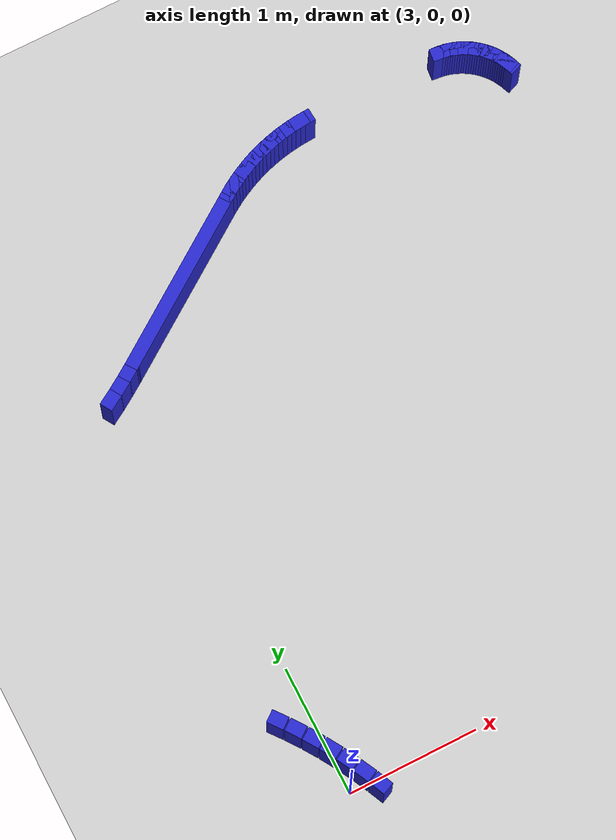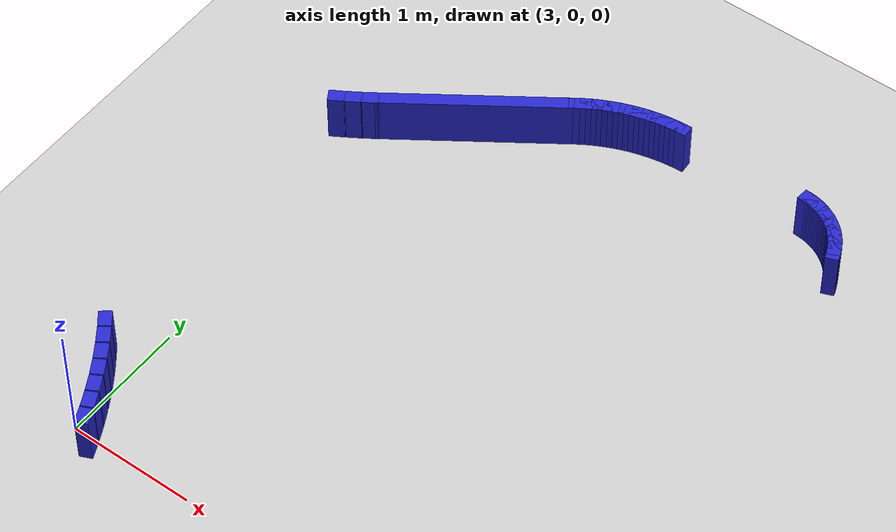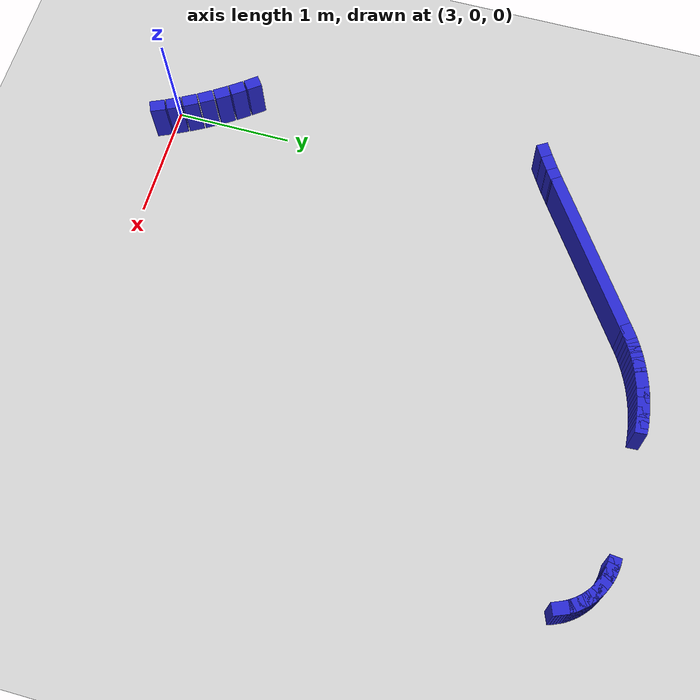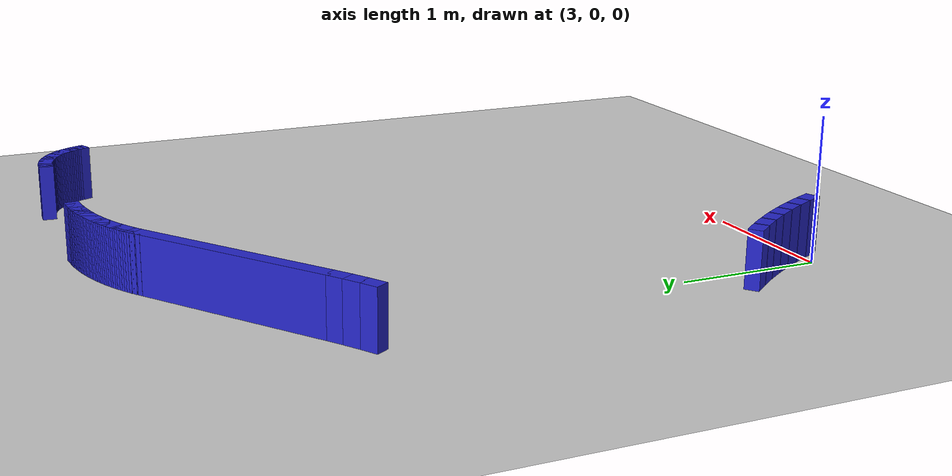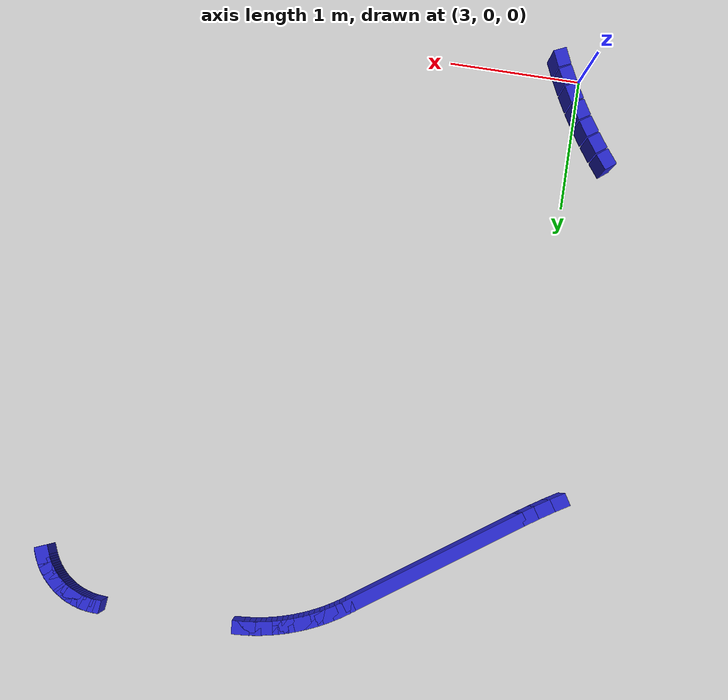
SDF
<sdf version="1.6">
 <world name="new_race_track">
  <include><uri>model://ground_plane</uri></include>
  <include><uri>model://sun</uri></include>
  <model name="race_track">
   <static>true</static>
   <link name="wall_link_142">
    <collision name="c"><geometry><box><size>0.1305 0.1 0.4</size></box></geometry></collision>
    <visual name="v">
     <geometry><box><size>0.1305 0.1 0.4</size></box></geometry>
     <material><ambient>0.15 0.15 0.8 1</ambient><diffuse>0.15 0.15 0.8 1</diffuse></material>
    </visual>
    <pose>2.7548 0.6383 0.200 0 0 -0.9062</pose>
   </link>
   <link name="wall_link_143">
    <collision name="c"><geometry><box><size>0.1305 0.1 0.4</size></box></geometry></collision>
    <visual name="v">
     <geometry><box><size>0.1305 0.1 0.4</size></box></geometry>
     <material><ambient>0.15 0.15 0.8 1</ambient><diffuse>0.15 0.15 0.8 1</diffuse></material>
    </visual>
    <pose>2.8395 0.5256 0.200 0 0 -0.9465</pose>
   </link>
   <link name="wall_link_144">
    <collision name="c"><geometry><box><size>0.1305 0.1 0.4</size></box></geometry></collision>
    <visual name="v">
     <geometry><box><size>0.1305 0.1 0.4</size></box></geometry>
     <material><ambient>0.15 0.15 0.8 1</ambient><diffuse>0.15 0.15 0.8 1</diffuse></material>
    </visual>
    <pose>2.9196 0.4096 0.200 0 0 -0.9868</pose>
   </link>
   <link name="wall_link_145">
    <collision name="c"><geometry><box><size>0.1305 0.1 0.4</size></box></geometry></collision>
    <visual name="v">
     <geometry><box><size>0.1305 0.1 0.4</size></box></geometry>
     <material><ambient>0.15 0.15 0.8 1</ambient><diffuse>0.15 0.15 0.8 1</diffuse></material>
    </visual>
    <pose>2.9949 0.2905 0.200 0 0 -1.0271</pose>
   </link>
   <link name="wall_link_146">
    <collision name="c"><geometry><box><size>0.1305 0.1 0.4</size></box></geometry></collision>
    <visual name="v">
     <geometry><box><size>0.1305 0.1 0.4</size></box></geometry>
     <material><ambient>0.15 0.15 0.8 1</ambient><diffuse>0.15 0.15 0.8 1</diffuse></material>
    </visual>
    <pose>3.0654 0.1684 0.200 0 0 -1.0673</pose>
   </link>
   <link name="wall_link_147">
    <collision name="c"><geometry><box><size>0.1305 0.1 0.4</size></box></geometry></collision>
    <visual name="v">
     <geometry><box><size>0.1305 0.1 0.4</size></box></geometry>
     <material><ambient>0.15 0.15 0.8 1</ambient><diffuse>0.15 0.15 0.8 1</diffuse></material>
    </visual>
    <pose>3.1309 0.0436 0.200 0 0 -1.1076</pose>
   </link>
   <link name="wall_link_148">
    <collision name="c"><geometry><box><size>0.1305 0.1 0.4</size></box></geometry></collision>
    <visual name="v">
     <geometry><box><size>0.1305 0.1 0.4</size></box></geometry>
     <material><ambient>0.15 0.15 0.8 1</ambient><diffuse>0.15 0.15 0.8 1</diffuse></material>
    </visual>
    <pose>3.1913 -0.0837 0.200 0 0 -1.1479</pose>
   </link>
   <link name="wall_link_249">
    <collision name="c"><geometry><box><size>0.1305 0.1 0.4</size></box></geometry></collision>
    <visual name="v">
     <geometry><box><size>0.1305 0.1 0.4</size></box></geometry>
     <material><ambient>0.15 0.15 0.8 1</ambient><diffuse>0.15 0.15 0.8 1</diffuse></material>
    </visual>
    <pose>6.4635 4.1865 0.200 0 0 1.9534</pose>
   </link>
   <link name="wall_link_250">
    <collision name="c"><geometry><box><size>0.1305 0.1 0.4</size></box></geometry></collision>
    <visual name="v">
     <geometry><box><size>0.1305 0.1 0.4</size></box></geometry>
     <material><ambient>0.15 0.15 0.8 1</ambient><diffuse>0.15 0.15 0.8 1</diffuse></material>
    </visual>
    <pose>6.4556 4.2050 0.200 0 0 1.9937</pose>
   </link>
   <link name="wall_link_251">
    <collision name="c"><geometry><box><size>0.1305 0.1 0.4</size></box></geometry></collision>
    <visual name="v">
     <geometry><box><size>0.1305 0.1 0.4</size></box></geometry>
     <material><ambient>0.15 0.15 0.8 1</ambient><diffuse>0.15 0.15 0.8 1</diffuse></material>
    </visual>
    <pose>6.4470 4.2232 0.200 0 0 2.0340</pose>
   </link>
   <link name="wall_link_252">
    <collision name="c"><geometry><box><size>0.1305 0.1 0.4</size></box></geometry></collision>
    <visual name="v">
     <geometry><box><size>0.1305 0.1 0.4</size></box></geometry>
     <material><ambient>0.15 0.15 0.8 1</ambient><diffuse>0.15 0.15 0.8 1</diffuse></material>
    </visual>
    <pose>6.4376 4.2410 0.200 0 0 2.0743</pose>
   </link>
   <link name="wall_link_253">
    <collision name="c"><geometry><box><size>0.1305 0.1 0.4</size></box></geometry></collision>
    <visual name="v">
     <geometry><box><size>0.1305 0.1 0.4</size></box></geometry>
     <material><ambient>0.15 0.15 0.8 1</ambient><diffuse>0.15 0.15 0.8 1</diffuse></material>
    </visual>
    <pose>6.4275 4.2585 0.200 0 0 2.1145</pose>
   </link>
   <link name="wall_link_254">
    <collision name="c"><geometry><box><size>0.1305 0.1 0.4</size></box></geometry></collision>
    <visual name="v">
     <geometry><box><size>0.1305 0.1 0.4</size></box></geometry>
     <material><ambient>0.15 0.15 0.8 1</ambient><diffuse>0.15 0.15 0.8 1</diffuse></material>
    </visual>
    <pose>6.4168 4.2755 0.200 0 0 2.1548</pose>
   </link>
   <link name="wall_link_255">
    <collision name="c"><geometry><box><size>0.1305 0.1 0.4</size></box></geometry></collision>
    <visual name="v">
     <geometry><box><size>0.1305 0.1 0.4</size></box></geometry>
     <material><ambient>0.15 0.15 0.8 1</ambient><diffuse>0.15 0.15 0.8 1</diffuse></material>
    </visual>
    <pose>6.4054 4.2920 0.200 0 0 2.1951</pose>
   </link>
   <link name="wall_link_256">
    <collision name="c"><geometry><box><size>0.1305 0.1 0.4</size></box></geometry></collision>
    <visual name="v">
     <geometry><box><size>0.1305 0.1 0.4</size></box></geometry>
     <material><ambient>0.15 0.15 0.8 1</ambient><diffuse>0.15 0.15 0.8 1</diffuse></material>
    </visual>
    <pose>6.3933 4.3081 0.200 0 0 2.2354</pose>
   </link>
   <link name="wall_link_257">
    <collision name="c"><geometry><box><size>0.1305 0.1 0.4</size></box></geometry></collision>
    <visual name="v">
     <geometry><box><size>0.1305 0.1 0.4</size></box></geometry>
     <material><ambient>0.15 0.15 0.8 1</ambient><diffuse>0.15 0.15 0.8 1</diffuse></material>
    </visual>
    <pose>6.3805 4.3237 0.200 0 0 2.2756</pose>
   </link>
   <link name="wall_link_258">
    <collision name="c"><geometry><box><size>0.1305 0.1 0.4</size></box></geometry></collision>
    <visual name="v">
     <geometry><box><size>0.1305 0.1 0.4</size></box></geometry>
     <material><ambient>0.15 0.15 0.8 1</ambient><diffuse>0.15 0.15 0.8 1</diffuse></material>
    </visual>
    <pose>6.3672 4.3388 0.200 0 0 2.3159</pose>
   </link>
   <link name="wall_link_259">
    <collision name="c"><geometry><box><size>0.1305 0.1 0.4</size></box></geometry></collision>
    <visual name="v">
     <geometry><box><size>0.1305 0.1 0.4</size></box></geometry>
     <material><ambient>0.15 0.15 0.8 1</ambient><diffuse>0.15 0.15 0.8 1</diffuse></material>
    </visual>
    <pose>6.3533 4.3533 0.200 0 0 2.3562</pose>
   </link>
   <link name="wall_link_260">
    <collision name="c"><geometry><box><size>0.1305 0.1 0.4</size></box></geometry></collision>
    <visual name="v">
     <geometry><box><size>0.1305 0.1 0.4</size></box></geometry>
     <material><ambient>0.15 0.15 0.8 1</ambient><diffuse>0.15 0.15 0.8 1</diffuse></material>
    </visual>
    <pose>6.3388 4.3672 0.200 0 0 2.3965</pose>
   </link>
   <link name="wall_link_261">
    <collision name="c"><geometry><box><size>0.1305 0.1 0.4</size></box></geometry></collision>
    <visual name="v">
     <geometry><box><size>0.1305 0.1 0.4</size></box></geometry>
     <material><ambient>0.15 0.15 0.8 1</ambient><diffuse>0.15 0.15 0.8 1</diffuse></material>
    </visual>
    <pose>6.3237 4.3805 0.200 0 0 2.4367</pose>
   </link>
   <link name="wall_link_262">
    <collision name="c"><geometry><box><size>0.1305 0.1 0.4</size></box></geometry></collision>
    <visual name="v">
     <geometry><box><size>0.1305 0.1 0.4</size></box></geometry>
     <material><ambient>0.15 0.15 0.8 1</ambient><diffuse>0.15 0.15 0.8 1</diffuse></material>
    </visual>
    <pose>6.3081 4.3933 0.200 0 0 2.4770</pose>
   </link>
   <link name="wall_link_263">
    <collision name="c"><geometry><box><size>0.1305 0.1 0.4</size></box></geometry></collision>
    <visual name="v">
     <geometry><box><size>0.1305 0.1 0.4</size></box></geometry>
     <material><ambient>0.15 0.15 0.8 1</ambient><diffuse>0.15 0.15 0.8 1</diffuse></material>
    </visual>
    <pose>6.2920 4.4054 0.200 0 0 2.5173</pose>
   </link>
   <link name="wall_link_264">
    <collision name="c"><geometry><box><size>0.1305 0.1 0.4</size></box></geometry></collision>
    <visual name="v">
     <geometry><box><size>0.1305 0.1 0.4</size></box></geometry>
     <material><ambient>0.15 0.15 0.8 1</ambient><diffuse>0.15 0.15 0.8 1</diffuse></material>
    </visual>
    <pose>6.2755 4.4168 0.200 0 0 2.5576</pose>
   </link>
   <link name="wall_link_265">
    <collision name="c"><geometry><box><size>0.1305 0.1 0.4</size></box></geometry></collision>
    <visual name="v">
     <geometry><box><size>0.1305 0.1 0.4</size></box></geometry>
     <material><ambient>0.15 0.15 0.8 1</ambient><diffuse>0.15 0.15 0.8 1</diffuse></material>
    </visual>
    <pose>6.2585 4.4275 0.200 0 0 2.5979</pose>
   </link>
   <link name="wall_link_266">
    <collision name="c"><geometry><box><size>0.1305 0.1 0.4</size></box></geometry></collision>
    <visual name="v">
     <geometry><box><size>0.1305 0.1 0.4</size></box></geometry>
     <material><ambient>0.15 0.15 0.8 1</ambient><diffuse>0.15 0.15 0.8 1</diffuse></material>
    </visual>
    <pose>6.2410 4.4376 0.200 0 0 2.6381</pose>
   </link>
   <link name="wall_link_267">
    <collision name="c"><geometry><box><size>0.1305 0.1 0.4</size></box></geometry></collision>
    <visual name="v">
     <geometry><box><size>0.1305 0.1 0.4</size></box></geometry>
     <material><ambient>0.15 0.15 0.8 1</ambient><diffuse>0.15 0.15 0.8 1</diffuse></material>
    </visual>
    <pose>6.2232 4.4470 0.200 0 0 2.6784</pose>
   </link>
   <link name="wall_link_268">
    <collision name="c"><geometry><box><size>0.1305 0.1 0.4</size></box></geometry></collision>
    <visual name="v">
     <geometry><box><size>0.1305 0.1 0.4</size></box></geometry>
     <material><ambient>0.15 0.15 0.8 1</ambient><diffuse>0.15 0.15 0.8 1</diffuse></material>
    </visual>
    <pose>6.2050 4.4556 0.200 0 0 2.7187</pose>
   </link>
   <link name="wall_link_269">
    <collision name="c"><geometry><box><size>0.1305 0.1 0.4</size></box></geometry></collision>
    <visual name="v">
     <geometry><box><size>0.1305 0.1 0.4</size></box></geometry>
     <material><ambient>0.15 0.15 0.8 1</ambient><diffuse>0.15 0.15 0.8 1</diffuse></material>
    </visual>
    <pose>6.1865 4.4635 0.200 0 0 2.7590</pose>
   </link>
   <link name="wall_link_270">
    <collision name="c"><geometry><box><size>0.1305 0.1 0.4</size></box></geometry></collision>
    <visual name="v">
     <geometry><box><size>0.1305 0.1 0.4</size></box></geometry>
     <material><ambient>0.15 0.15 0.8 1</ambient><diffuse>0.15 0.15 0.8 1</diffuse></material>
    </visual>
    <pose>6.1677 4.4706 0.200 0 0 2.7992</pose>
   </link>
   <link name="wall_link_271">
    <collision name="c"><geometry><box><size>0.1305 0.1 0.4</size></box></geometry></collision>
    <visual name="v">
     <geometry><box><size>0.1305 0.1 0.4</size></box></geometry>
     <material><ambient>0.15 0.15 0.8 1</ambient><diffuse>0.15 0.15 0.8 1</diffuse></material>
    </visual>
    <pose>6.1486 4.4770 0.200 0 0 2.8395</pose>
   </link>
   <link name="wall_link_272">
    <collision name="c"><geometry><box><size>0.1305 0.1 0.4</size></box></geometry></collision>
    <visual name="v">
     <geometry><box><size>0.1305 0.1 0.4</size></box></geometry>
     <material><ambient>0.15 0.15 0.8 1</ambient><diffuse>0.15 0.15 0.8 1</diffuse></material>
    </visual>
    <pose>6.1293 4.4826 0.200 0 0 2.8798</pose>
   </link>
   <link name="wall_link_273">
    <collision name="c"><geometry><box><size>0.1305 0.1 0.4</size></box></geometry></collision>
    <visual name="v">
     <geometry><box><size>0.1305 0.1 0.4</size></box></geometry>
     <material><ambient>0.15 0.15 0.8 1</ambient><diffuse>0.15 0.15 0.8 1</diffuse></material>
    </visual>
    <pose>6.1098 4.4874 0.200 0 0 2.9201</pose>
   </link>
   <link name="wall_link_274">
    <collision name="c"><geometry><box><size>0.1305 0.1 0.4</size></box></geometry></collision>
    <visual name="v">
     <geometry><box><size>0.1305 0.1 0.4</size></box></geometry>
     <material><ambient>0.15 0.15 0.8 1</ambient><diffuse>0.15 0.15 0.8 1</diffuse></material>
    </visual>
    <pose>6.0901 4.4914 0.200 0 0 2.9603</pose>
   </link>
   <link name="wall_link_275">
    <collision name="c"><geometry><box><size>0.1305 0.1 0.4</size></box></geometry></collision>
    <visual name="v">
     <geometry><box><size>0.1305 0.1 0.4</size></box></geometry>
     <material><ambient>0.15 0.15 0.8 1</ambient><diffuse>0.15 0.15 0.8 1</diffuse></material>
    </visual>
    <pose>6.0702 4.4946 0.200 0 0 3.0006</pose>
   </link>
   <link name="wall_link_276">
    <collision name="c"><geometry><box><size>0.1305 0.1 0.4</size></box></geometry></collision>
    <visual name="v">
     <geometry><box><size>0.1305 0.1 0.4</size></box></geometry>
     <material><ambient>0.15 0.15 0.8 1</ambient><diffuse>0.15 0.15 0.8 1</diffuse></material>
    </visual>
    <pose>6.0502 4.4971 0.200 0 0 3.0409</pose>
   </link>
   <link name="wall_link_282">
    <collision name="c"><geometry><box><size>0.1333 0.1 0.4</size></box></geometry></collision>
    <visual name="v">
     <geometry><box><size>0.1333 0.1 0.4</size></box></geometry>
     <material><ambient>0.15 0.15 0.8 1</ambient><diffuse>0.15 0.15 0.8 1</diffuse></material>
    </visual>
    <pose>4.9360 4.4961 0.200 0 0 -3.0722</pose>
   </link>
   <link name="wall_link_283">
    <collision name="c"><geometry><box><size>0.1333 0.1 0.4</size></box></geometry></collision>
    <visual name="v">
     <geometry><box><size>0.1333 0.1 0.4</size></box></geometry>
     <material><ambient>0.15 0.15 0.8 1</ambient><diffuse>0.15 0.15 0.8 1</diffuse></material>
    </visual>
    <pose>4.8945 4.4926 0.200 0 0 -3.0444</pose>
   </link>
   <link name="wall_link_284">
    <collision name="c"><geometry><box><size>0.1333 0.1 0.4</size></box></geometry></collision>
    <visual name="v">
     <geometry><box><size>0.1333 0.1 0.4</size></box></geometry>
     <material><ambient>0.15 0.15 0.8 1</ambient><diffuse>0.15 0.15 0.8 1</diffuse></material>
    </visual>
    <pose>4.8531 4.4880 0.200 0 0 -3.0166</pose>
   </link>
   <link name="wall_link_285">
    <collision name="c"><geometry><box><size>0.1333 0.1 0.4</size></box></geometry></collision>
    <visual name="v">
     <geometry><box><size>0.1333 0.1 0.4</size></box></geometry>
     <material><ambient>0.15 0.15 0.8 1</ambient><diffuse>0.15 0.15 0.8 1</diffuse></material>
    </visual>
    <pose>4.8119 4.4823 0.200 0 0 -2.9889</pose>
   </link>
   <link name="wall_link_286">
    <collision name="c"><geometry><box><size>0.1333 0.1 0.4</size></box></geometry></collision>
    <visual name="v">
     <geometry><box><size>0.1333 0.1 0.4</size></box></geometry>
     <material><ambient>0.15 0.15 0.8 1</ambient><diffuse>0.15 0.15 0.8 1</diffuse></material>
    </visual>
    <pose>4.7708 4.4754 0.200 0 0 -2.9611</pose>
   </link>
   <link name="wall_link_287">
    <collision name="c"><geometry><box><size>0.1333 0.1 0.4</size></box></geometry></collision>
    <visual name="v">
     <geometry><box><size>0.1333 0.1 0.4</size></box></geometry>
     <material><ambient>0.15 0.15 0.8 1</ambient><diffuse>0.15 0.15 0.8 1</diffuse></material>
    </visual>
    <pose>4.7299 4.4673 0.200 0 0 -2.9333</pose>
   </link>
   <link name="wall_link_288">
    <collision name="c"><geometry><box><size>0.1333 0.1 0.4</size></box></geometry></collision>
    <visual name="v">
     <geometry><box><size>0.1333 0.1 0.4</size></box></geometry>
     <material><ambient>0.15 0.15 0.8 1</ambient><diffuse>0.15 0.15 0.8 1</diffuse></material>
    </visual>
    <pose>4.6893 4.4581 0.200 0 0 -2.9056</pose>
   </link>
   <link name="wall_link_289">
    <collision name="c"><geometry><box><size>0.1333 0.1 0.4</size></box></geometry></collision>
    <visual name="v">
     <geometry><box><size>0.1333 0.1 0.4</size></box></geometry>
     <material><ambient>0.15 0.15 0.8 1</ambient><diffuse>0.15 0.15 0.8 1</diffuse></material>
    </visual>
    <pose>4.6490 4.4478 0.200 0 0 -2.8778</pose>
   </link>
   <link name="wall_link_290">
    <collision name="c"><geometry><box><size>0.1333 0.1 0.4</size></box></geometry></collision>
    <visual name="v">
     <geometry><box><size>0.1333 0.1 0.4</size></box></geometry>
     <material><ambient>0.15 0.15 0.8 1</ambient><diffuse>0.15 0.15 0.8 1</diffuse></material>
    </visual>
    <pose>4.6089 4.4364 0.200 0 0 -2.8500</pose>
   </link>
   <link name="wall_link_291">
    <collision name="c"><geometry><box><size>0.1333 0.1 0.4</size></box></geometry></collision>
    <visual name="v">
     <geometry><box><size>0.1333 0.1 0.4</size></box></geometry>
     <material><ambient>0.15 0.15 0.8 1</ambient><diffuse>0.15 0.15 0.8 1</diffuse></material>
    </visual>
    <pose>4.5692 4.4239 0.200 0 0 -2.8223</pose>
   </link>
   <link name="wall_link_292">
    <collision name="c"><geometry><box><size>0.1333 0.1 0.4</size></box></geometry></collision>
    <visual name="v">
     <geometry><box><size>0.1333 0.1 0.4</size></box></geometry>
     <material><ambient>0.15 0.15 0.8 1</ambient><diffuse>0.15 0.15 0.8 1</diffuse></material>
    </visual>
    <pose>4.5299 4.4103 0.200 0 0 -2.7945</pose>
   </link>
   <link name="wall_link_293">
    <collision name="c"><geometry><box><size>0.1333 0.1 0.4</size></box></geometry></collision>
    <visual name="v">
     <geometry><box><size>0.1333 0.1 0.4</size></box></geometry>
     <material><ambient>0.15 0.15 0.8 1</ambient><diffuse>0.15 0.15 0.8 1</diffuse></material>
    </visual>
    <pose>4.4909 4.3956 0.200 0 0 -2.7667</pose>
   </link>
   <link name="wall_link_294">
    <collision name="c"><geometry><box><size>0.1333 0.1 0.4</size></box></geometry></collision>
    <visual name="v">
     <geometry><box><size>0.1333 0.1 0.4</size></box></geometry>
     <material><ambient>0.15 0.15 0.8 1</ambient><diffuse>0.15 0.15 0.8 1</diffuse></material>
    </visual>
    <pose>4.4524 4.3798 0.200 0 0 -2.7390</pose>
   </link>
   <link name="wall_link_295">
    <collision name="c"><geometry><box><size>0.1333 0.1 0.4</size></box></geometry></collision>
    <visual name="v">
     <geometry><box><size>0.1333 0.1 0.4</size></box></geometry>
     <material><ambient>0.15 0.15 0.8 1</ambient><diffuse>0.15 0.15 0.8 1</diffuse></material>
    </visual>
    <pose>4.4143 4.3629 0.200 0 0 -2.7112</pose>
   </link>
   <link name="wall_link_296">
    <collision name="c"><geometry><box><size>0.1333 0.1 0.4</size></box></geometry></collision>
    <visual name="v">
     <geometry><box><size>0.1333 0.1 0.4</size></box></geometry>
     <material><ambient>0.15 0.15 0.8 1</ambient><diffuse>0.15 0.15 0.8 1</diffuse></material>
    </visual>
    <pose>4.3767 4.3450 0.200 0 0 -2.6834</pose>
   </link>
   <link name="wall_link_297">
    <collision name="c"><geometry><box><size>0.1333 0.1 0.4</size></box></geometry></collision>
    <visual name="v">
     <geometry><box><size>0.1333 0.1 0.4</size></box></geometry>
     <material><ambient>0.15 0.15 0.8 1</ambient><diffuse>0.15 0.15 0.8 1</diffuse></material>
    </visual>
    <pose>4.3396 4.3261 0.200 0 0 -2.6557</pose>
   </link>
   <link name="wall_link_298">
    <collision name="c"><geometry><box><size>0.1333 0.1 0.4</size></box></geometry></collision>
    <visual name="v">
     <geometry><box><size>0.1333 0.1 0.4</size></box></geometry>
     <material><ambient>0.15 0.15 0.8 1</ambient><diffuse>0.15 0.15 0.8 1</diffuse></material>
    </visual>
    <pose>4.3031 4.3062 0.200 0 0 -2.6279</pose>
   </link>
   <link name="wall_link_299">
    <collision name="c"><geometry><box><size>0.1333 0.1 0.4</size></box></geometry></collision>
    <visual name="v">
     <geometry><box><size>0.1333 0.1 0.4</size></box></geometry>
     <material><ambient>0.15 0.15 0.8 1</ambient><diffuse>0.15 0.15 0.8 1</diffuse></material>
    </visual>
    <pose>4.2671 4.2852 0.200 0 0 -2.6001</pose>
   </link>
   <link name="wall_link_300">
    <collision name="c"><geometry><box><size>0.1333 0.1 0.4</size></box></geometry></collision>
    <visual name="v">
     <geometry><box><size>0.1333 0.1 0.4</size></box></geometry>
     <material><ambient>0.15 0.15 0.8 1</ambient><diffuse>0.15 0.15 0.8 1</diffuse></material>
    </visual>
    <pose>4.2317 4.2632 0.200 0 0 -2.5724</pose>
   </link>
   <link name="wall_link_301">
    <collision name="c"><geometry><box><size>0.1333 0.1 0.4</size></box></geometry></collision>
    <visual name="v">
     <geometry><box><size>0.1333 0.1 0.4</size></box></geometry>
     <material><ambient>0.15 0.15 0.8 1</ambient><diffuse>0.15 0.15 0.8 1</diffuse></material>
    </visual>
    <pose>4.1969 4.2403 0.200 0 0 -2.5446</pose>
   </link>
   <link name="merged_wall_link_302">
    <pose>3.5898 3.8157 0.2000 0.0000 0.0000 -2.5307</pose>
    <collision name="c"><geometry><box><size>1.4901 0.1000 0.4000</size></box></geometry></collision>
    <visual name="v">
     <geometry><box><size>1.4901 0.1000 0.4000</size></box></geometry>
     <material><ambient>0.15 0.15 0.8 1</ambient><diffuse>0.15 0.15 0.8 1</diffuse></material>
    </visual>
   </link>
   <link name="wall_link_303">
    <collision name="c"><geometry><box><size>0.1314 0.1 0.4</size></box></geometry></collision>
    <visual name="v">
     <geometry><box><size>0.1314 0.1 0.4</size></box></geometry>
     <material><ambient>0.15 0.15 0.8 1</ambient><diffuse>0.15 0.15 0.8 1</diffuse></material>
    </visual>
    <pose>2.9496 3.3683 0.200 0 0 -2.5443</pose>
   </link>
   <link name="wall_link_304">
    <collision name="c"><geometry><box><size>0.1314 0.1 0.4</size></box></geometry></collision>
    <visual name="v">
     <geometry><box><size>0.1314 0.1 0.4</size></box></geometry>
     <material><ambient>0.15 0.15 0.8 1</ambient><diffuse>0.15 0.15 0.8 1</diffuse></material>
    </visual>
    <pose>2.8477 3.3010 0.200 0 0 -2.5715</pose>
   </link>
   <link name="wall_link_305">
    <collision name="c"><geometry><box><size>0.1314 0.1 0.4</size></box></geometry></collision>
    <visual name="v">
     <geometry><box><size>0.1314 0.1 0.4</size></box></geometry>
     <material><ambient>0.15 0.15 0.8 1</ambient><diffuse>0.15 0.15 0.8 1</diffuse></material>
    </visual>
    <pose>2.7440 3.2364 0.200 0 0 -2.5986</pose>
   </link>
  </model>
 </world>
</sdf>
